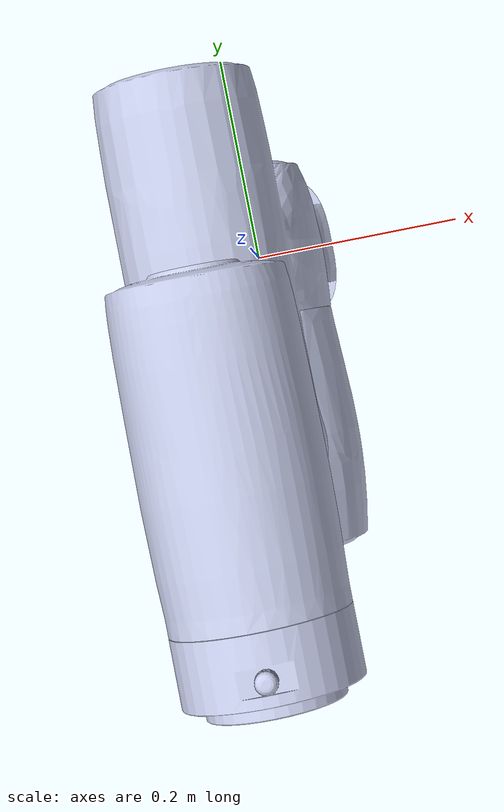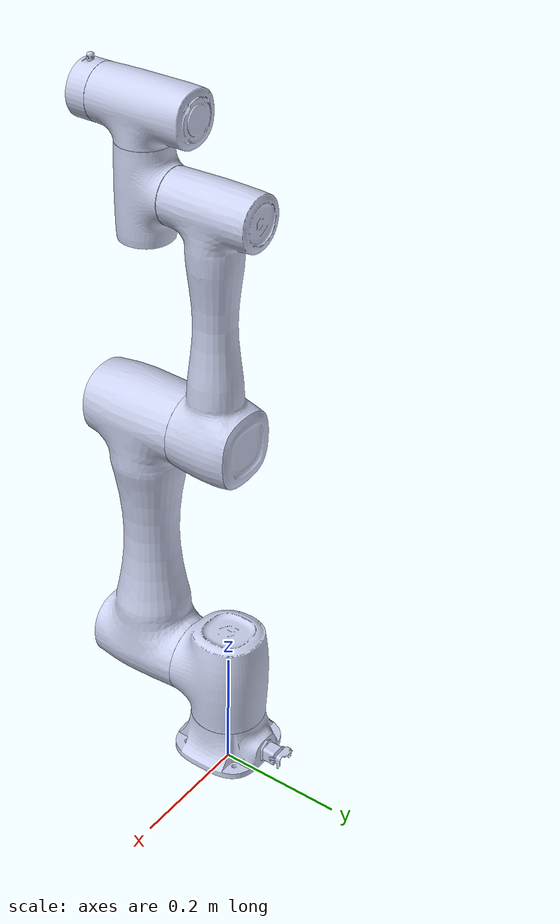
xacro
<?xml version="1.0"?>
<robot name="cr5_robot" xmlns:xacro="http://ros.org/wiki/xacro">
  <link name="dummy_link" />
  <link
    name="base_link">
    <inertial>
      <origin
        xyz="-7.94481692926771E-06 0.00312979848669993 0.0289305341801692"
        rpy="0 0 0" />
      <mass
        value="0.921803441591401" />
      <inertia
        ixx="0.00155218443258025"
        ixy="4.57972945608826E-08"
        ixz="-1.88985548171397E-07"
        iyy="0.0013468290665964"
        iyz="-1.49049888586631E-06"
        izz="0.00225259728822295" />
    </inertial>
    <visual>
      <origin
        xyz="0 0 0"
        rpy="0 0 0" />
      <geometry>
        <mesh
          filename="file://$(find cra_description)/meshes/cr5/base_link.STL" />
      </geometry>
      <material
        name="">
        <color
          rgba="0.792156862745098 0.819607843137255 0.933333333333333 1" />
      </material>
    </visual>
    <collision>
      <origin
        xyz="0 0 0"
        rpy="0 0 0" />
      <geometry>
        <mesh
          filename="file://$(find cra_description)/meshes/cr5/base_link.STL" />
      </geometry>
    </collision>
  </link>
  <link  name="world"/>
  <joint name="world_joint" type="fixed">
    <origin xyz="0 0 0.03" rpy="0 0 0" />
    <parent link="world" />
    <child  link="dummy_link" />
  </joint>
  <joint name="dummy_joint" type="fixed">
      <parent link="dummy_link" />
      <child  link="base_link" />
    </joint>

  <link
    name="Link1">
    <inertial>
      <origin
        xyz="1.73246183103459E-07 -0.00325457191611467 -0.00763347019440543"
        rpy="0 0 0" />
      <mass
        value="1.61309076753593" />
      <inertia
        ixx="0.00546783618974324"
        ixy="1.55105105896333E-09"
        ixz="-7.41656921043421E-08"
        iyy="0.00525034621721433"
        iyz="-9.78846785618848E-05"
        izz="0.00340956817185818" />
    </inertial>
    <visual>
      <origin
        xyz="0 0 0"
        rpy="0 0 0" />
      <geometry>
        <mesh
          filename="file://$(find cra_description)/meshes/cr5/J1.STL" />
      </geometry>
      <material
        name="">
        <color
          rgba="0.792156862745098 0.819607843137255 0.933333333333333 1" />
      </material>
    </visual>
    <collision>
      <origin
        xyz="0 0 0"
        rpy="0 0 0" />
      <geometry>
        <mesh
          filename="file://$(find cra_description)/meshes/cr5/J1.STL" />
      </geometry>
    </collision>
  </link>
  <joint
    name="joint1"
    type="revolute">
    <origin
      xyz="0 0 0.147"
      rpy="0 0 0" />
    <parent
      link="base_link" />
    <child
      link="Link1" />
    <axis
      xyz="0 0 1" />
    <limit
      lower="-6.28"
      upper="6.28"
      effort="300"
      velocity="3.14" />
  </joint>
  <link
    name="Link2">
    <inertial>
      <origin
        xyz="-0.213514541447242 -0.000174145825908622 0.142532293229243"
        rpy="0 0 0" />
      <mass
        value="5.52502766431306" />
      <inertia
        ixx="0.0135390102321012"
        ixy="-0.000132792191512557"
        ixz="1.08942594671362E-06"
        iyy="0.175351190928579"
        iyz="-1.55761894405212E-07"
        izz="0.171155665794094" />
    </inertial>
    <visual>
      <origin
        xyz="0 0 0"
        rpy="0 0 0" />
      <geometry>
        <mesh
          filename="file://$(find cra_description)/meshes/cr5/J2.STL" />
      </geometry>
      <material
        name="">
        <color
          rgba="0.792156862745098 0.819607843137255 0.933333333333333 1" />
      </material>
    </visual>
    <collision>
      <origin
        xyz="0 0 0"
        rpy="0 0 0" />
      <geometry>
        <mesh
          filename="file://$(find cra_description)/meshes/cr5/J2.STL" />
      </geometry>
    </collision>
  </link>
  <joint
    name="joint2"
    type="revolute">
    <origin
      xyz="0 0 0"
      rpy="1.5708 1.5708 0" />
    <parent
      link="Link1" />
    <child
      link="Link2" />
    <axis
      xyz="0 0 1" />
    <limit
      lower="-6.28"
      upper="6.28"
      effort="300"
      velocity="3.14" />
  </joint>
  <link
    name="Link3">
    <inertial>
      <origin
        xyz="-0.152341668261688 0.000149359452503151 0.0226831470311876"
        rpy="0 0 0" />
      <mass
        value="2.85389421082174" />
      <inertia
        ixx="0.00426233866492008"
        ixy="5.97680353890416E-05"
        ixz="0.00145366515031237"
        iyy="0.0651295114823361"
        iyz="-1.39806459057094E-06"
        izz="0.0643864464792015" />
    </inertial>
    <visual>
      <origin
        xyz="0 0 0"
        rpy="0 0 0" />
      <geometry>
        <mesh
          filename="file://$(find cra_description)/meshes/cr5/J3.STL" />
      </geometry>
      <material
        name="">
        <color
          rgba="0.792156862745098 0.819607843137255 0.933333333333333 1" />
      </material>
    </visual>
    <collision>
      <origin
        xyz="0 0 0"
        rpy="0 0 0" />
      <geometry>
        <mesh
          filename="file://$(find cra_description)/meshes/cr5/J3.STL" />
      </geometry>
    </collision>
  </link>
  <joint
    name="joint3"
    type="revolute">
    <origin
      xyz="-0.427 -0.00034866 0"
      rpy="0 0 0" />
    <parent
      link="Link2" />
    <child
      link="Link3" />
    <axis
      xyz="0 0 1" />
    <limit
      lower="-2.792"
      upper="2.792"
      effort="300"
      velocity="3.14" />
  </joint>
  <link
    name="Link4">
    <inertial>
      <origin
        xyz="5.59497173461253E-08 -0.00203370549966442 -0.00155327517554493"
        rpy="0 0 0" />
      <mass
        value="0.670967728058518" />
      <inertia
        ixx="0.00165215048696393"
        ixy="6.99884063757388E-10"
        ixz="-2.82735061927927E-09"
        iyy="0.000679018426564622"
        iyz="-3.9331196747873E-05"
        izz="0.00161207334026771" />
    </inertial>
    <visual>
      <origin
        xyz="0 0 0"
        rpy="0 0 0" />
      <geometry>
        <mesh
          filename="file://$(find cra_description)/meshes/cr5/J4.STL" />
      </geometry>
      <material
        name="">
        <color
          rgba="0.792156862745098 0.819607843137255 0.933333333333333 1" />
      </material>
    </visual>
    <collision>
      <origin
        xyz="0 0 0"
        rpy="0 0 0" />
      <geometry>
        <mesh
          filename="file://$(find cra_description)/meshes/cr5/J4.STL" />
      </geometry>
    </collision>
  </link>
  <joint
    name="joint4"
    type="revolute">
    <origin
      xyz="-0.357 0.00034866 0.141"
      rpy="0 0 -1.5708" />
    <parent
      link="Link3" />
    <child
      link="Link4" />
    <axis
      xyz="0 0 1" />
    <limit
      lower="-6.28"
      upper="6.28"
      effort="300"
      velocity="3.14" />
  </joint>
  <link
    name="Link5">
    <inertial>
      <origin
        xyz="1.66839344582068E-08 -0.00612503200433553 -0.00127182253467861"
        rpy="0 0 0" />
      <mass
        value="0.741136954745254" />
      <inertia
        ixx="0.00212858333782698"
        ixy="-3.05114118302956E-08"
        ixz="1.84587334372261E-08"
        iyy="0.000739514141641333"
        iyz="5.38479498016834E-05"
        izz="0.00208815449047131" />
    </inertial>
    <visual>
      <origin
        xyz="0 0 0"
        rpy="0 0 0" />
      <geometry>
        <mesh
          filename="file://$(find cra_description)/meshes/cr5/J5.STL" />
      </geometry>
      <material
        name="">
        <color
          rgba="0.792156862745098 0.819607843137255 0.933333333333333 1" />
      </material>
    </visual>
    <collision>
      <origin
        xyz="0 0 0"
        rpy="0 0 0" />
      <geometry>
        <mesh
          filename="file://$(find cra_description)/meshes/cr5/J5.STL" />
      </geometry>
    </collision>
  </link>
  <joint
    name="joint5"
    type="revolute">
    <origin
      xyz="0 -0.116 0"
      rpy="1.5708 0 0" />
    <parent
      link="Link4" />
    <child
      link="Link5" />
    <axis
      xyz="0 0 1" />
    <limit
      lower="-6.28"
      upper="6.28"
      effort="300"
      velocity="3.14" />
  </joint>
  <link
    name="Link6">
    <inertial>
      <origin
        xyz="4.94396980619616E-11 9.3763228635857E-05 -0.019285436425589"
        rpy="0 0 0" />
      <mass
        value="0.157885369717385" />
      <inertia
        ixx="7.94006759268348E-05"
        ixy="4.6621042011945E-15"
        ixz="2.94413450080265E-14"
        iyy="7.91691792019657E-05"
        iyz="-9.61313747365424E-08"
        izz="0.000130860179835048" />
    </inertial>
    <visual>
      <origin
        xyz="0 0 0"
        rpy="0 0 0" />
      <geometry>
        <mesh
          filename="file://$(find cra_description)/meshes/cr5/J6.STL" />
      </geometry>
      <material
        name="">
        <color
          rgba="0.792156862745098 0.819607843137255 0.933333333333333 1" />
      </material>
    </visual>
    <collision>
      <origin
        xyz="0 0 0"
        rpy="0 0 0" />
      <geometry>
        <mesh
          filename="file://$(find cra_description)/meshes/cr5/J6.STL" />
      </geometry>
    </collision>
  </link>
  <joint
    name="joint6"
    type="revolute">
    <origin
      xyz="0 0.105 0"
      rpy="-1.5708 0 0" />
    <parent
      link="Link5" />
    <child
      link="Link6" />
    <axis
      xyz="0 0 1" />
    <limit
      lower="-6.28"
      upper="6.28"
      effort="300"
      velocity="3.14" />
  </joint>
    <gazebo reference="base_link">
        <gravity>false</gravity>
        <selfCollide>true</selfCollide>
    </gazebo>
    <gazebo reference="Link1">
        <gravity>false</gravity>
        <selfCollide>true</selfCollide>
    </gazebo>
    <gazebo reference="Link2">
        <gravity>false</gravity>
        <selfCollide>true</selfCollide>
    </gazebo>
    <gazebo reference="Link3">
        <gravity>false</gravity>
        <selfCollide>true</selfCollide>
    </gazebo>
    <gazebo reference="Link4">
        <gravity>false</gravity>
        <selfCollide>true</selfCollide>
    </gazebo>
    <gazebo reference="Link5">
        <gravity>false</gravity>
        <selfCollide>true</selfCollide>
    </gazebo>
    <gazebo reference="Link6">
        <gravity>false</gravity>
        <selfCollide>true</selfCollide>
    </gazebo>
    <!-- 在运行demo.launch.py时，需要注释这个ros2_control节点，因为它使用了xxx.ros2_control.xacro来生成了ros2_control节点-->
    <ros2_control name="GazeboSystem" type="system">
        <hardware>
            <plugin>gz_ros2_control/GazeboSimSystem</plugin>
        </hardware>
        <joint name="joint1">
            <command_interface name="position">
                <param name="min">-1</param>
                <param name="max">1</param>
            </command_interface>
            <state_interface name="position">
                <param name="initial_value">0.0</param>
            </state_interface>
            <state_interface name="velocity"/>
        </joint>
        <joint name="joint2">
            <command_interface name="position">
                <param name="min">-1</param>
                <param name="max">1</param>
            </command_interface>
            <state_interface name="position">
                <param name="initial_value">0.0</param>
            </state_interface>
            <state_interface name="velocity"/>
        </joint>
        <joint name="joint3">
            <command_interface name="position">
                <param name="min">-1</param>
                <param name="max">1</param>
            </command_interface>
            <state_interface name="position">
                <param name="initial_value">0.0</param>
            </state_interface>
            <state_interface name="velocity"/>
        </joint>
        <joint name="joint4">
            <command_interface name="position">
                <param name="min">-1</param>
                <param name="max">1</param>
            </command_interface>
            <state_interface name="position">
                <param name="initial_value">0.0</param>
            </state_interface>
            <state_interface name="velocity"/>
        </joint>
        <joint name="joint5">
            <command_interface name="position">
                <param name="min">-1</param>
                <param name="max">1</param>
            </command_interface>
            <state_interface name="position">
                <param name="initial_value">0.0</param>
            </state_interface>
            <state_interface name="velocity"/>
        </joint>
        <joint name="joint6">
            <command_interface name="position">
                <param name="min">-1</param>
                <param name="max">1</param>
            </command_interface>
            <state_interface name="position">
                <param name="initial_value">0.0</param>
            </state_interface>
            <state_interface name="velocity"/>
        </joint>
    </ros2_control>

    <gazebo>
        <plugin filename="gz_ros2_control-system" name="gz_ros2_control::GazeboSimROS2ControlPlugin">
            <parameters> $(find cr5_moveit)/config/ros2_controllers.yaml</parameters>
            <robot_param_node>robot_state_publisher</robot_param_node>
        </plugin>
    </gazebo>
</robot>
